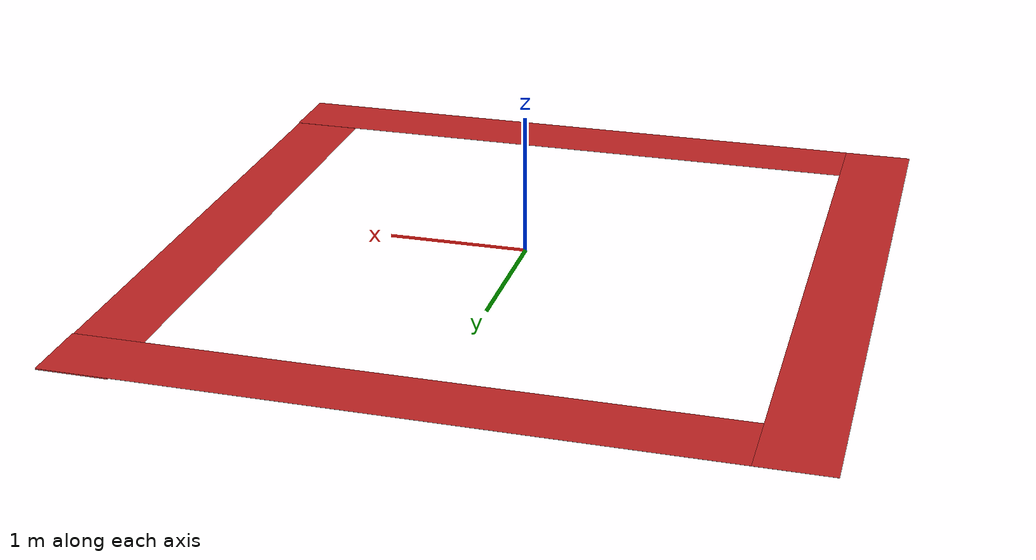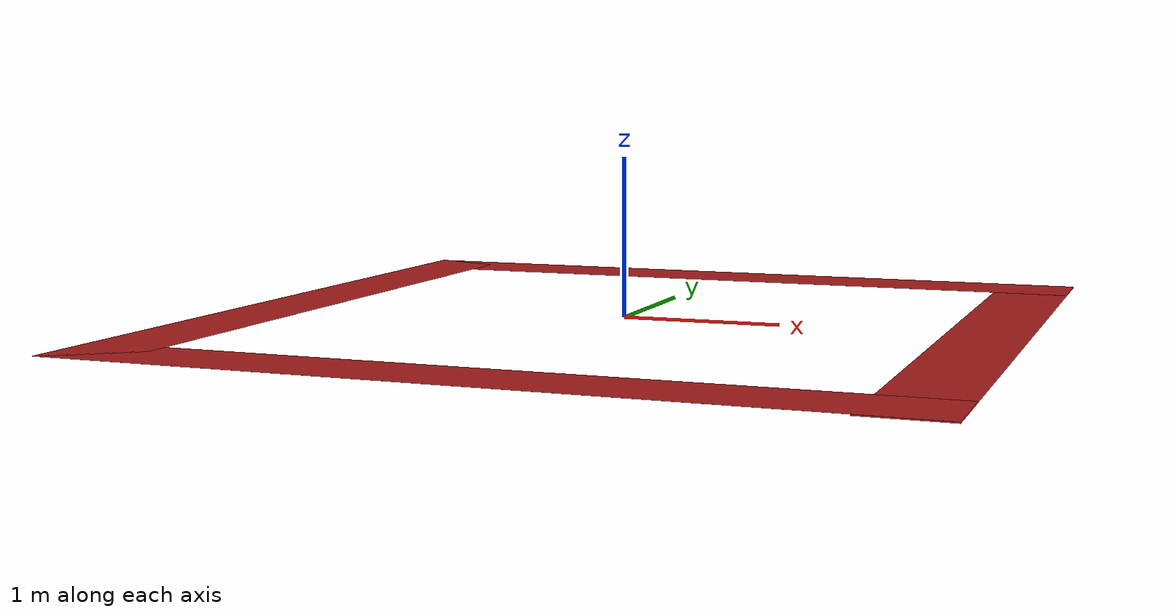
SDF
<?xml version='1.0'?>
<sdf version='1.7'>
  <model name='red curve'>
    <model name='red line'>
      <static>1</static>
      <link name='link_ground'>
        <collision name='collision'>
          <geometry>
            <plane>
              <normal>0 0 1</normal>
              <size>0.1 3.2</size>
            </plane>
          </geometry>
          <surface>
            <friction>
              <ode>
                <mu>100</mu>
                <mu2>50</mu2>
              </ode>
            </friction>
          </surface>
        </collision>
        <visual name='visual_ground'>
          <cast_shadows>0</cast_shadows>
          <geometry>
            <plane>
              <normal>0 0 1</normal>
              <size>0.5 5</size>
            </plane>
          </geometry>
          <material>
            <script>
              <uri>file://media/materials/scripts/gazebo.material</uri>
              <name>Gazebo/Red</name>
            </script>
          </material>
        </visual>
      </link>
      <pose>2.25 0 0 0 0 0</pose>
    </model>
    <model name='red line_0'>
      <static>1</static>
      <link name='link_ground'>
        <collision name='collision'>
          <geometry>
            <plane>
              <normal>0 0 1</normal>
              <size>0.1 3.2</size>
            </plane>
          </geometry>
          <surface>
            <friction>
              <ode>
                <mu>100</mu>
                <mu2>50</mu2>
              </ode>
            </friction>
          </surface>
        </collision>
        <visual name='visual_ground'>
          <cast_shadows>0</cast_shadows>
          <geometry>
            <plane>
              <normal>0 0 1</normal>
              <size>0.5 5</size>
            </plane>
          </geometry>
          <material>
            <script>
              <uri>file://media/materials/scripts/gazebo.material</uri>
              <name>Gazebo/Red</name>
            </script>
          </material>
        </visual>
      </link>
      <pose>-2.25 0 0 0 0 0</pose>
    </model>
    <model name='red_line_rotated'>
      <static>1</static>
      <link name='link_ground'>
        <collision name='collision'>
          <geometry>
            <plane>
              <normal>0 0 1</normal>
              <size>0.1 3.2</size>
            </plane>
          </geometry>
          <surface>
            <friction>
              <ode>
                <mu>100</mu>
                <mu2>50</mu2>
              </ode>
            </friction>
          </surface>
        </collision>
        <visual name='visual_ground'>
          <cast_shadows>0</cast_shadows>
          <geometry>
            <plane>
              <normal>0 0 1</normal>
              <size>0.5 5</size>
            </plane>
          </geometry>
          <material>
            <script>
              <uri>file://media/materials/scripts/gazebo.material</uri>
              <name>Gazebo/Red</name>
            </script>
          </material>
        </visual>
        <pose>0 0 0 0 0 1.570796327</pose>
      </link>
      <pose>0 2.25 0 0 0 0</pose>
    </model>
    <model name='red_line_rotated_0'>
      <static>1</static>
      <link name='link_ground'>
        <collision name='collision'>
          <geometry>
            <plane>
              <normal>0 0 1</normal>
              <size>0.1 3.2</size>
            </plane>
          </geometry>
          <surface>
            <friction>
              <ode>
                <mu>100</mu>
                <mu2>50</mu2>
              </ode>
            </friction>
          </surface>
        </collision>
        <visual name='visual_ground'>
          <cast_shadows>0</cast_shadows>
          <geometry>
            <plane>
              <normal>0 0 1</normal>
              <size>0.5 5</size>
            </plane>
          </geometry>
          <material>
            <script>
              <uri>file://media/materials/scripts/gazebo.material</uri>
              <name>Gazebo/Red</name>
            </script>
          </material>
        </visual>
        <pose>0 0 0 0 0 1.570796327</pose>
      </link>
      <pose>0 -2.25 0 0 0 0</pose>
    </model>
    <static>0</static>
    <allow_auto_disable>1</allow_auto_disable>
  </model>
</sdf>
